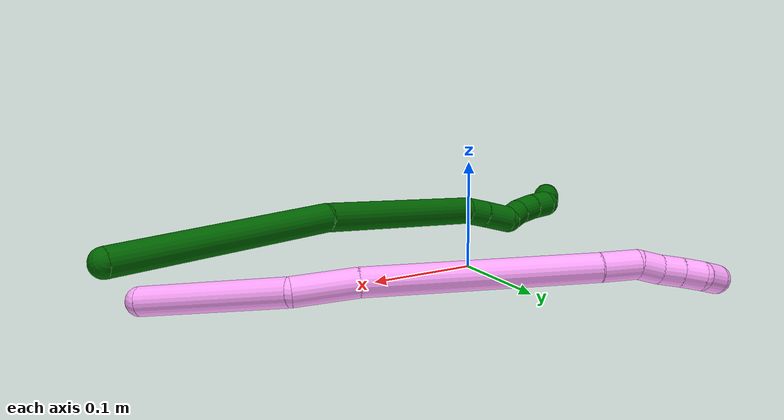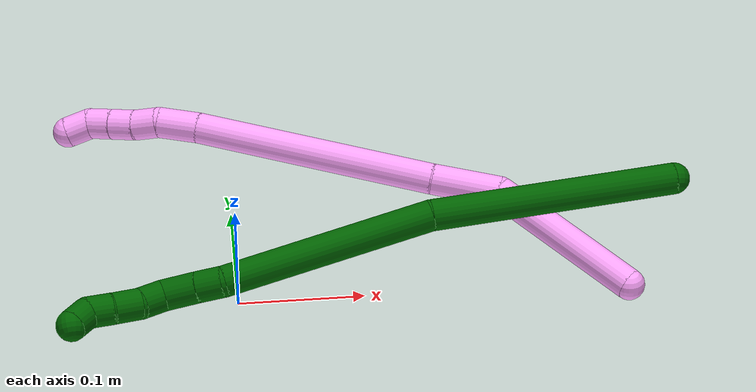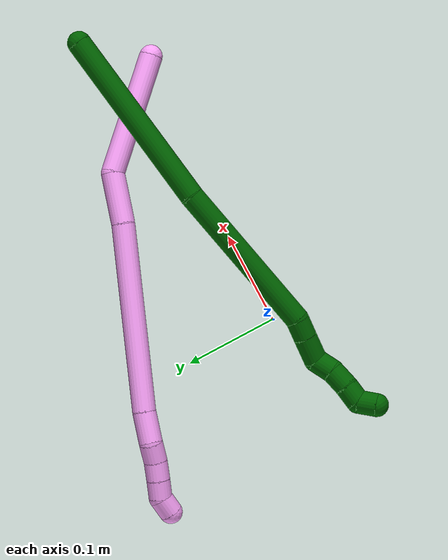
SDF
<sdf version="1.7">
 <world name="default">
  <model name="photoneo_s_sensor">
   <static>1</static>
   <pose>0 0 2 1.57079 1.57079 3.14159</pose>
   <link name="link">
    <inertial><mass>0.1</mass></inertial>
    <sensor name="sensor" type="depth">
     <update_rate>30</update_rate>
     <camera>
      <horizontal_fov>1.22</horizontal_fov>
      <image><width>1920</width><height>1200</height><format>B8G8R8</format></image>
      <clip><near>0.1</near><far>4</far></clip>
      <depth_camera><output>points</output></depth_camera>
     </camera>
     <plugin name="camera_plugin" filename="libgazebo_ros_depth_camera.so">
      <baseline>0.2</baseline>
      <alwaysOn>1</alwaysOn>
      <updateRate>0.0</updateRate>
      <cameraName>camera_ir</cameraName>
      <imageTopicName>/camera/color/image_raw</imageTopicName>
      <cameraInfoTopicName>/camera/color/camera_info</cameraInfoTopicName>
      <depthImageTopicName>/camera/depth/image_raw</depthImageTopicName>
      <depthImageCameraInfoTopicName>/camera/depth/camera_info</depthImageCameraInfoTopicName>
      <pointCloudTopicName>/camera/depth/points</pointCloudTopicName>
      <frameName>fr_optical</frameName>
      <pointCloudCutoff>0.1</pointCloudCutoff>
      <pointCloudCutoffMax>2.0</pointCloudCutoffMax>
      <distortionK1>0</distortionK1>
      <distortionK2>0</distortionK2>
      <distortionK3>0</distortionK3>
      <distortionT1>0</distortionT1>
      <distortionT2>0</distortionT2>
      <CxPrime>0</CxPrime>
      <Cx>0</Cx>
      <Cy>0</Cy>
      <focalLength>0</focalLength>
      <hackBaseline>0</hackBaseline>
     </plugin>
    </sensor>
   </link>
  </model>
  <model name="bin">
   <static>1</static>
   <link name="bottom">
    <collision name="collision-bottom">
     <pose>0 0 -0.01 0 -0 0</pose>
     <geometry><box><size>0.8 0.6 0.02</size></box></geometry>
     <surface>
      <friction><ode><mu>100</mu><mu2>100</mu2></ode></friction>
      <contact><collide_bitmask>65535</collide_bitmask></contact>
     </surface>
    </collision>
   </link>
   <link name="west_wall">
    <collision name="collision-west_wall">
     <pose>-0.41 0 0.1 0 -0 0</pose>
     <geometry><box><size>0.02 0.6 0.2</size></box></geometry>
     <surface>
      <friction><ode><mu>100</mu><mu2>100</mu2></ode></friction>
      <contact><collide_bitmask>65535</collide_bitmask></contact>
     </surface>
    </collision>
   </link>
   <link name="east_wall">
    <collision name="collision-east_wall">
     <pose>0.41 0 0.1 0 -0 0</pose>
     <geometry><box><size>0.02 0.6 0.2</size></box></geometry>
     <surface>
      <friction><ode><mu>100</mu><mu2>100</mu2></ode></friction>
      <contact><collide_bitmask>65535</collide_bitmask></contact>
     </surface>
    </collision>
   </link>
   <link name="south_wall">
    <collision name="collision-south_wall">
     <pose>0 -0.31 0.1 0 -0 0</pose>
     <geometry><box><size>0.8 0.02 0.2</size></box></geometry>
     <surface>
      <friction><ode><mu>100</mu><mu2>100</mu2></ode></friction>
      <contact><collide_bitmask>65535</collide_bitmask></contact>
     </surface>
    </collision>
   </link>
   <link name="north_wall">
    <collision name="collision-north_wall">
     <pose>0 0.31 0.1 0 -0 0</pose>
     <geometry><box><size>0.8 0.02 0.2</size></box></geometry>
     <surface>
      <friction><ode><mu>100</mu><mu2>100</mu2></ode></friction>
      <contact><collide_bitmask>65535</collide_bitmask></contact>
     </surface>
    </collision>
   </link>
  </model>
  <model name="4">
   <static>0</static>
   <link name="4">
    <collision name="collision-cylinder-e_1_1_4">
     <pose>-0.018534 -0.061307 0.016933 1.30132 -0.283551 -0.216461</pose>
     <geometry><cylinder><radius>0.0125</radius><length>0.132496</length></cylinder></geometry>
     <surface>
      <friction><ode><mu>1.16</mu><mu2>1.16</mu2><slip1>0</slip1><slip2>0</slip2></ode></friction>
      <contact><ode><kp>1e+06</kp><kd>1</kd><max_vel>0</max_vel><min_depth>0.001</min_depth></ode></contact>
     </surface>
    </collision>
    <visual name="visual-cylinder-e_1_1_4">
     <pose>-0.018534 -0.061307 0.016933 1.30132 -0.283551 -0.216461</pose>
     <geometry><cylinder><radius>0.0125</radius><length>0.132496</length></cylinder></geometry>
     <material><ambient>1 0.65098 0.996078 1</ambient></material>
    </visual>
    <collision name="collision-cylinder-e_2_4_5">
     <pose>-0.031446 -0.149423 0.036951 1.4562 0.205402 0.183248</pose>
     <geometry><cylinder><radius>0.0125</radius><length>0.055129</length></cylinder></geometry>
     <surface>
      <friction><ode><mu>1.16</mu><mu2>1.16</mu2><slip1>0</slip1><slip2>0</slip2></ode></friction>
      <contact><ode><kp>1e+06</kp><kd>1</kd><max_vel>0</max_vel><min_depth>0.001</min_depth></ode></contact>
     </surface>
    </collision>
    <visual name="visual-cylinder-e_2_4_5">
     <pose>-0.031446 -0.149423 0.036951 1.4562 0.205402 0.183248</pose>
     <geometry><cylinder><radius>0.0125</radius><length>0.055129</length></cylinder></geometry>
     <material><ambient>1 0.65098 0.996078 1</ambient></material>
    </visual>
    <collision name="collision-cylinder-e_3_5_6">
     <pose>-0.015265 -0.274552 0.047587 1.49415 0.106664 0.0988</pose>
     <geometry><cylinder><radius>0.0125</radius><length>0.198349</length></cylinder></geometry>
     <surface>
      <friction><ode><mu>1.16</mu><mu2>1.16</mu2><slip1>0</slip1><slip2>0</slip2></ode></friction>
      <contact><ode><kp>1e+06</kp><kd>1</kd><max_vel>0</max_vel><min_depth>0.001</min_depth></ode></contact>
     </surface>
    </collision>
    <visual name="visual-cylinder-e_3_5_6">
     <pose>-0.015265 -0.274552 0.047587 1.49415 0.106664 0.0988</pose>
     <geometry><cylinder><radius>0.0125</radius><length>0.198349</length></cylinder></geometry>
     <material><ambient>1 0.65098 0.996078 1</ambient></material>
    </visual>
    <collision name="collision-cylinder-e_4_6_7">
     <pose>-0.001377 -0.389097 0.055997 1.51786 0.202163 0.191801</pose>
     <geometry><cylinder><radius>0.0125</radius><length>0.03317</length></cylinder></geometry>
     <surface>
      <friction><ode><mu>1.16</mu><mu2>1.16</mu2><slip1>0</slip1><slip2>0</slip2></ode></friction>
      <contact><ode><kp>1e+06</kp><kd>1</kd><max_vel>0</max_vel><min_depth>0.001</min_depth></ode></contact>
     </surface>
    </collision>
    <visual name="visual-cylinder-e_4_6_7">
     <pose>-0.001377 -0.389097 0.055997 1.51786 0.202163 0.191801</pose>
     <geometry><cylinder><radius>0.0125</radius><length>0.03317</length></cylinder></geometry>
     <material><ambient>1 0.65098 0.996078 1</ambient></material>
    </visual>
    <collision name="collision-cylinder-e_5_7_8">
     <pose>0.003786 -0.415219 0.054279 1.8256 0.177378 0.229094</pose>
     <geometry><cylinder><radius>0.0125</radius><length>0.02078</length></cylinder></geometry>
     <surface>
      <friction><ode><mu>1.16</mu><mu2>1.16</mu2><slip1>0</slip1><slip2>0</slip2></ode></friction>
      <contact><ode><kp>1e+06</kp><kd>1</kd><max_vel>0</max_vel><min_depth>0.001</min_depth></ode></contact>
     </surface>
    </collision>
    <visual name="visual-cylinder-e_5_7_8">
     <pose>0.003786 -0.415219 0.054279 1.8256 0.177378 0.229094</pose>
     <geometry><cylinder><radius>0.0125</radius><length>0.02078</length></cylinder></geometry>
     <material><ambient>1 0.65098 0.996078 1</ambient></material>
    </visual>
    <collision name="collision-cylinder-e_6_8_9">
     <pose>0.006659 -0.434997 0.050412 1.70059 0.103947 0.118365</pose>
     <geometry><cylinder><radius>0.0125</radius><length>0.020038</length></cylinder></geometry>
     <surface>
      <friction><ode><mu>1.16</mu><mu2>1.16</mu2><slip1>0</slip1><slip2>0</slip2></ode></friction>
      <contact><ode><kp>1e+06</kp><kd>1</kd><max_vel>0</max_vel><min_depth>0.001</min_depth></ode></contact>
     </surface>
    </collision>
    <visual name="visual-cylinder-e_6_8_9">
     <pose>0.006659 -0.434997 0.050412 1.70059 0.103947 0.118365</pose>
     <geometry><cylinder><radius>0.0125</radius><length>0.020038</length></cylinder></geometry>
     <material><ambient>1 0.65098 0.996078 1</ambient></material>
    </visual>
    <collision name="collision-cylinder-e_7_9_10">
     <pose>0.008456 -0.454748 0.0476 1.72381 0.075632 0.088175</pose>
     <geometry><cylinder><radius>0.0125</radius><length>0.02003</length></cylinder></geometry>
     <surface>
      <friction><ode><mu>1.16</mu><mu2>1.16</mu2><slip1>0</slip1><slip2>0</slip2></ode></friction>
      <contact><ode><kp>1e+06</kp><kd>1</kd><max_vel>0</max_vel><min_depth>0.001</min_depth></ode></contact>
     </surface>
    </collision>
    <visual name="visual-cylinder-e_7_9_10">
     <pose>0.008456 -0.454748 0.0476 1.72381 0.075632 0.088175</pose>
     <geometry><cylinder><radius>0.0125</radius><length>0.02003</length></cylinder></geometry>
     <material><ambient>1 0.65098 0.996078 1</ambient></material>
    </visual>
    <collision name="collision-cylinder-e_8_10_2">
     <pose>0.014028 -0.472746 0.042789 1.9553 0.502223 0.727229</pose>
     <geometry><cylinder><radius>0.0125</radius><length>0.020007</length></cylinder></geometry>
     <surface>
      <friction><ode><mu>1.16</mu><mu2>1.16</mu2><slip1>0</slip1><slip2>0</slip2></ode></friction>
      <contact><ode><kp>1e+06</kp><kd>1</kd><max_vel>0</max_vel><min_depth>0.001</min_depth></ode></contact>
     </surface>
    </collision>
    <visual name="visual-cylinder-e_8_10_2">
     <pose>0.014028 -0.472746 0.042789 1.9553 0.502223 0.727229</pose>
     <geometry><cylinder><radius>0.0125</radius><length>0.020007</length></cylinder></geometry>
     <material><ambient>1 0.65098 0.996078 1</ambient></material>
    </visual>
    <collision name="collision-sphere-2">
     <pose>0.018843 -0.480874 0.039499 0 -0 0</pose>
     <geometry><sphere><radius>0.0125</radius></sphere></geometry>
     <surface>
      <friction><ode><mu>1.16</mu><mu2>1.16</mu2><slip1>0</slip1><slip2>0</slip2></ode></friction>
      <contact><ode><kp>1e+06</kp><kd>1</kd><max_vel>0</max_vel><min_depth>0.001</min_depth></ode></contact>
     </surface>
    </collision>
    <visual name="visual-sphere-2">
     <pose>0.018843 -0.480874 0.039499 0 -0 0</pose>
     <geometry><sphere><radius>0.0125</radius></sphere></geometry>
     <material><ambient>1 0.65098 0.996078 1</ambient></material>
    </visual>
    <collision name="collision-sphere-10">
     <pose>0.009212 -0.464618 0.046078 0 -0 0</pose>
     <geometry><sphere><radius>0.0125</radius></sphere></geometry>
     <surface>
      <friction><ode><mu>1.16</mu><mu2>1.16</mu2><slip1>0</slip1><slip2>0</slip2></ode></friction>
      <contact><ode><kp>1e+06</kp><kd>1</kd><max_vel>0</max_vel><min_depth>0.001</min_depth></ode></contact>
     </surface>
    </collision>
    <visual name="visual-sphere-10">
     <pose>0.009212 -0.464618 0.046078 0 -0 0</pose>
     <geometry><sphere><radius>0.0125</radius></sphere></geometry>
     <material><ambient>1 0.65098 0.996078 1</ambient></material>
    </visual>
    <collision name="collision-sphere-9">
     <pose>0.007699 -0.444878 0.049122 0 -0 0</pose>
     <geometry><sphere><radius>0.0125</radius></sphere></geometry>
     <surface>
      <friction><ode><mu>1.16</mu><mu2>1.16</mu2><slip1>0</slip1><slip2>0</slip2></ode></friction>
      <contact><ode><kp>1e+06</kp><kd>1</kd><max_vel>0</max_vel><min_depth>0.001</min_depth></ode></contact>
     </surface>
    </collision>
    <visual name="visual-sphere-9">
     <pose>0.007699 -0.444878 0.049122 0 -0 0</pose>
     <geometry><sphere><radius>0.0125</radius></sphere></geometry>
     <material><ambient>1 0.65098 0.996078 1</ambient></material>
    </visual>
    <collision name="collision-sphere-4">
     <pose>-0.037068 -0.122614 0.033865 0 -0 0</pose>
     <geometry><sphere><radius>0.0125</radius></sphere></geometry>
     <surface>
      <friction><ode><mu>1.16</mu><mu2>1.16</mu2><slip1>0</slip1><slip2>0</slip2></ode></friction>
      <contact><ode><kp>1e+06</kp><kd>1</kd><max_vel>0</max_vel><min_depth>0.001</min_depth></ode></contact>
     </surface>
    </collision>
    <visual name="visual-sphere-4">
     <pose>-0.037068 -0.122614 0.033865 0 -0 0</pose>
     <geometry><sphere><radius>0.0125</radius></sphere></geometry>
     <material><ambient>1 0.65098 0.996078 1</ambient></material>
    </visual>
    <collision name="collision-sphere-1">
     <geometry><sphere><radius>0.0125</radius></sphere></geometry>
     <surface>
      <friction><ode><mu>1.16</mu><mu2>1.16</mu2><slip1>0</slip1><slip2>0</slip2></ode></friction>
      <contact><ode><kp>1e+06</kp><kd>1</kd><max_vel>0</max_vel><min_depth>0.001</min_depth></ode></contact>
     </surface>
    </collision>
    <visual name="visual-sphere-1">
     <geometry><sphere><radius>0.0125</radius></sphere></geometry>
     <material><ambient>1 0.65098 0.996078 1</ambient></material>
    </visual>
    <collision name="collision-sphere-8">
     <pose>0.00562 -0.425116 0.051701 0 -0 0</pose>
     <geometry><sphere><radius>0.0125</radius></sphere></geometry>
     <surface>
      <friction><ode><mu>1.16</mu><mu2>1.16</mu2><slip1>0</slip1><slip2>0</slip2></ode></friction>
      <contact><ode><kp>1e+06</kp><kd>1</kd><max_vel>0</max_vel><min_depth>0.001</min_depth></ode></contact>
     </surface>
    </collision>
    <visual name="visual-sphere-8">
     <pose>0.00562 -0.425116 0.051701 0 -0 0</pose>
     <geometry><sphere><radius>0.0125</radius></sphere></geometry>
     <material><ambient>1 0.65098 0.996078 1</ambient></material>
    </visual>
    <collision name="collision-sphere-5">
     <pose>-0.025824 -0.176231 0.040037 0 -0 0</pose>
     <geometry><sphere><radius>0.0125</radius></sphere></geometry>
     <surface>
      <friction><ode><mu>1.16</mu><mu2>1.16</mu2><slip1>0</slip1><slip2>0</slip2></ode></friction>
      <contact><ode><kp>1e+06</kp><kd>1</kd><max_vel>0</max_vel><min_depth>0.001</min_depth></ode></contact>
     </surface>
    </collision>
    <visual name="visual-sphere-5">
     <pose>-0.025824 -0.176231 0.040037 0 -0 0</pose>
     <geometry><sphere><radius>0.0125</radius></sphere></geometry>
     <material><ambient>1 0.65098 0.996078 1</ambient></material>
    </visual>
    <collision name="collision-sphere-6">
     <pose>-0.004707 -0.372873 0.055138 0 -0 0</pose>
     <geometry><sphere><radius>0.0125</radius></sphere></geometry>
     <surface>
      <friction><ode><mu>1.16</mu><mu2>1.16</mu2><slip1>0</slip1><slip2>0</slip2></ode></friction>
      <contact><ode><kp>1e+06</kp><kd>1</kd><max_vel>0</max_vel><min_depth>0.001</min_depth></ode></contact>
     </surface>
    </collision>
    <visual name="visual-sphere-6">
     <pose>-0.004707 -0.372873 0.055138 0 -0 0</pose>
     <geometry><sphere><radius>0.0125</radius></sphere></geometry>
     <material><ambient>1 0.65098 0.996078 1</ambient></material>
    </visual>
    <collision name="collision-sphere-7">
     <pose>0.001953 -0.405322 0.056857 0 -0 0</pose>
     <geometry><sphere><radius>0.0125</radius></sphere></geometry>
     <surface>
      <friction><ode><mu>1.16</mu><mu2>1.16</mu2><slip1>0</slip1><slip2>0</slip2></ode></friction>
      <contact><ode><kp>1e+06</kp><kd>1</kd><max_vel>0</max_vel><min_depth>0.001</min_depth></ode></contact>
     </surface>
    </collision>
    <visual name="visual-sphere-7">
     <pose>0.001953 -0.405322 0.056857 0 -0 0</pose>
     <geometry><sphere><radius>0.0125</radius></sphere></geometry>
     <material><ambient>1 0.65098 0.996078 1</ambient></material>
    </visual>
    <inertial>
     <pose>-0.013201 -0.239272 0.039049 0 -0 0</pose>
     <mass>0.5</mass>
     <inertia>
      <ixx>0.000893</ixx>
      <ixy>0</ixy>
      <ixz>0</ixz>
      <iyy>0.000114</iyy>
      <iyz>0</iyz>
      <izz>0.000845</izz>
     </inertia>
    </inertial>
   </link>
   <pose>0.307381 -0.017367 0.012265 0.077057 -0.149604 -2.05537</pose>
  </model>
  <model name="6">
   <static>0</static>
   <link name="6">
    <collision name="collision-cylinder-e_1_1_4">
     <pose>-0.096147 -0.0229 0.003041 1.43878 -1.335 -1.20857</pose>
     <geometry><cylinder><radius>0.0125</radius><length>0.197767</length></cylinder></geometry>
     <surface>
      <friction><ode><mu>1.16</mu><mu2>1.16</mu2><slip1>0</slip1><slip2>0</slip2></ode></friction>
      <contact><ode><kp>1e+06</kp><kd>1</kd><max_vel>0</max_vel><min_depth>0.001</min_depth></ode></contact>
     </surface>
    </collision>
    <visual name="visual-cylinder-e_1_1_4">
     <pose>-0.096147 -0.0229 0.003041 1.43878 -1.335 -1.20857</pose>
     <geometry><cylinder><radius>0.0125</radius><length>0.197767</length></cylinder></geometry>
     <material><ambient>0 0.392157 0.003922 1</ambient></material>
    </visual>
    <collision name="collision-cylinder-e_2_4_5">
     <pose>-0.271658 -0.072388 0.020295 1.07988 -1.20776 -0.78411</pose>
     <geometry><cylinder><radius>0.0125</radius><length>0.169794</length></cylinder></geometry>
     <surface>
      <friction><ode><mu>1.16</mu><mu2>1.16</mu2><slip1>0</slip1><slip2>0</slip2></ode></friction>
      <contact><ode><kp>1e+06</kp><kd>1</kd><max_vel>0</max_vel><min_depth>0.001</min_depth></ode></contact>
     </surface>
    </collision>
    <visual name="visual-cylinder-e_2_4_5">
     <pose>-0.271658 -0.072388 0.020295 1.07988 -1.20776 -0.78411</pose>
     <geometry><cylinder><radius>0.0125</radius><length>0.169794</length></cylinder></geometry>
     <material><ambient>0 0.392157 0.003922 1</ambient></material>
    </visual>
    <collision name="collision-cylinder-e_3_5_6">
     <pose>-0.359685 -0.104802 0.034522 1.56829 -0.978801 -0.976721</pose>
     <geometry><cylinder><radius>0.0125</radius><length>0.020882</length></cylinder></geometry>
     <surface>
      <friction><ode><mu>1.16</mu><mu2>1.16</mu2><slip1>0</slip1><slip2>0</slip2></ode></friction>
      <contact><ode><kp>1e+06</kp><kd>1</kd><max_vel>0</max_vel><min_depth>0.001</min_depth></ode></contact>
     </surface>
    </collision>
    <visual name="visual-cylinder-e_3_5_6">
     <pose>-0.359685 -0.104802 0.034522 1.56829 -0.978801 -0.976721</pose>
     <geometry><cylinder><radius>0.0125</radius><length>0.020882</length></cylinder></geometry>
     <material><ambient>0 0.392157 0.003922 1</ambient></material>
    </visual>
    <collision name="collision-cylinder-e_4_6_7">
     <pose>-0.380092 -0.118799 0.034824 1.53564 -0.962605 -0.934038</pose>
     <geometry><cylinder><radius>0.0125</radius><length>0.028617</length></cylinder></geometry>
     <surface>
      <friction><ode><mu>1.16</mu><mu2>1.16</mu2><slip1>0</slip1><slip2>0</slip2></ode></friction>
      <contact><ode><kp>1e+06</kp><kd>1</kd><max_vel>0</max_vel><min_depth>0.001</min_depth></ode></contact>
     </surface>
    </collision>
    <visual name="visual-cylinder-e_4_6_7">
     <pose>-0.380092 -0.118799 0.034824 1.53564 -0.962605 -0.934038</pose>
     <geometry><cylinder><radius>0.0125</radius><length>0.028617</length></cylinder></geometry>
     <material><ambient>0 0.392157 0.003922 1</ambient></material>
    </visual>
    <collision name="collision-cylinder-e_5_7_8">
     <pose>-0.401918 -0.126353 0.037975 -0.212191 -1.28808 0.159583</pose>
     <geometry><cylinder><radius>0.0125</radius><length>0.020998</length></cylinder></geometry>
     <surface>
      <friction><ode><mu>1.16</mu><mu2>1.16</mu2><slip1>0</slip1><slip2>0</slip2></ode></friction>
      <contact><ode><kp>1e+06</kp><kd>1</kd><max_vel>0</max_vel><min_depth>0.001</min_depth></ode></contact>
     </surface>
    </collision>
    <visual name="visual-cylinder-e_5_7_8">
     <pose>-0.401918 -0.126353 0.037975 -0.212191 -1.28808 0.159583</pose>
     <geometry><cylinder><radius>0.0125</radius><length>0.020998</length></cylinder></geometry>
     <material><ambient>0 0.392157 0.003922 1</ambient></material>
    </visual>
    <collision name="collision-cylinder-e_6_8_9">
     <pose>-0.422712 -0.126986 0.041751 0.939619 -1.42726 -0.828379</pose>
     <geometry><cylinder><radius>0.0125</radius><length>0.021647</length></cylinder></geometry>
     <surface>
      <friction><ode><mu>1.16</mu><mu2>1.16</mu2><slip1>0</slip1><slip2>0</slip2></ode></friction>
      <contact><ode><kp>1e+06</kp><kd>1</kd><max_vel>0</max_vel><min_depth>0.001</min_depth></ode></contact>
     </surface>
    </collision>
    <visual name="visual-cylinder-e_6_8_9">
     <pose>-0.422712 -0.126986 0.041751 0.939619 -1.42726 -0.828379</pose>
     <geometry><cylinder><radius>0.0125</radius><length>0.021647</length></cylinder></geometry>
     <material><ambient>0 0.392157 0.003922 1</ambient></material>
    </visual>
    <collision name="collision-cylinder-e_7_9_10">
     <pose>-0.443218 -0.130486 0.043037 1.40698 -1.34205 -1.18539</pose>
     <geometry><cylinder><radius>0.0125</radius><length>0.020112</length></cylinder></geometry>
     <surface>
      <friction><ode><mu>1.16</mu><mu2>1.16</mu2><slip1>0</slip1><slip2>0</slip2></ode></friction>
      <contact><ode><kp>1e+06</kp><kd>1</kd><max_vel>0</max_vel><min_depth>0.001</min_depth></ode></contact>
     </surface>
    </collision>
    <visual name="visual-cylinder-e_7_9_10">
     <pose>-0.443218 -0.130486 0.043037 1.40698 -1.34205 -1.18539</pose>
     <geometry><cylinder><radius>0.0125</radius><length>0.020112</length></cylinder></geometry>
     <material><ambient>0 0.392157 0.003922 1</ambient></material>
    </visual>
    <collision name="collision-cylinder-e_8_10_2">
     <pose>-0.460971 -0.129777 0.048863 -0.496971 -0.908603 0.246571</pose>
     <geometry><cylinder><radius>0.0125</radius><length>0.020183</length></cylinder></geometry>
     <surface>
      <friction><ode><mu>1.16</mu><mu2>1.16</mu2><slip1>0</slip1><slip2>0</slip2></ode></friction>
      <contact><ode><kp>1e+06</kp><kd>1</kd><max_vel>0</max_vel><min_depth>0.001</min_depth></ode></contact>
     </surface>
    </collision>
    <visual name="visual-cylinder-e_8_10_2">
     <pose>-0.460971 -0.129777 0.048863 -0.496971 -0.908603 0.246571</pose>
     <geometry><cylinder><radius>0.0125</radius><length>0.020183</length></cylinder></geometry>
     <material><ambient>0 0.392157 0.003922 1</ambient></material>
    </visual>
    <collision name="collision-sphere-2">
     <pose>-0.46893 -0.126819 0.054317 0 -0 0</pose>
     <geometry><sphere><radius>0.0125</radius></sphere></geometry>
     <surface>
      <friction><ode><mu>1.16</mu><mu2>1.16</mu2><slip1>0</slip1><slip2>0</slip2></ode></friction>
      <contact><ode><kp>1e+06</kp><kd>1</kd><max_vel>0</max_vel><min_depth>0.001</min_depth></ode></contact>
     </surface>
    </collision>
    <visual name="visual-sphere-2">
     <pose>-0.46893 -0.126819 0.054317 0 -0 0</pose>
     <geometry><sphere><radius>0.0125</radius></sphere></geometry>
     <material><ambient>0 0.392157 0.003922 1</ambient></material>
    </visual>
    <collision name="collision-sphere-10">
     <pose>-0.453012 -0.132736 0.043409 0 -0 0</pose>
     <geometry><sphere><radius>0.0125</radius></sphere></geometry>
     <surface>
      <friction><ode><mu>1.16</mu><mu2>1.16</mu2><slip1>0</slip1><slip2>0</slip2></ode></friction>
      <contact><ode><kp>1e+06</kp><kd>1</kd><max_vel>0</max_vel><min_depth>0.001</min_depth></ode></contact>
     </surface>
    </collision>
    <visual name="visual-sphere-10">
     <pose>-0.453012 -0.132736 0.043409 0 -0 0</pose>
     <geometry><sphere><radius>0.0125</radius></sphere></geometry>
     <material><ambient>0 0.392157 0.003922 1</ambient></material>
    </visual>
    <collision name="collision-sphere-9">
     <pose>-0.433424 -0.128236 0.042665 0 -0 0</pose>
     <geometry><sphere><radius>0.0125</radius></sphere></geometry>
     <surface>
      <friction><ode><mu>1.16</mu><mu2>1.16</mu2><slip1>0</slip1><slip2>0</slip2></ode></friction>
      <contact><ode><kp>1e+06</kp><kd>1</kd><max_vel>0</max_vel><min_depth>0.001</min_depth></ode></contact>
     </surface>
    </collision>
    <visual name="visual-sphere-9">
     <pose>-0.433424 -0.128236 0.042665 0 -0 0</pose>
     <geometry><sphere><radius>0.0125</radius></sphere></geometry>
     <material><ambient>0 0.392157 0.003922 1</ambient></material>
    </visual>
    <collision name="collision-sphere-4">
     <pose>-0.192295 -0.0458 0.006082 0 -0 0</pose>
     <geometry><sphere><radius>0.0125</radius></sphere></geometry>
     <surface>
      <friction><ode><mu>1.16</mu><mu2>1.16</mu2><slip1>0</slip1><slip2>0</slip2></ode></friction>
      <contact><ode><kp>1e+06</kp><kd>1</kd><max_vel>0</max_vel><min_depth>0.001</min_depth></ode></contact>
     </surface>
    </collision>
    <visual name="visual-sphere-4">
     <pose>-0.192295 -0.0458 0.006082 0 -0 0</pose>
     <geometry><sphere><radius>0.0125</radius></sphere></geometry>
     <material><ambient>0 0.392157 0.003922 1</ambient></material>
    </visual>
    <collision name="collision-sphere-1">
     <geometry><sphere><radius>0.0125</radius></sphere></geometry>
     <surface>
      <friction><ode><mu>1.16</mu><mu2>1.16</mu2><slip1>0</slip1><slip2>0</slip2></ode></friction>
      <contact><ode><kp>1e+06</kp><kd>1</kd><max_vel>0</max_vel><min_depth>0.001</min_depth></ode></contact>
     </surface>
    </collision>
    <visual name="visual-sphere-1">
     <geometry><sphere><radius>0.0125</radius></sphere></geometry>
     <material><ambient>0 0.392157 0.003922 1</ambient></material>
    </visual>
    <collision name="collision-sphere-8">
     <pose>-0.412 -0.125736 0.040838 0 -0 0</pose>
     <geometry><sphere><radius>0.0125</radius></sphere></geometry>
     <surface>
      <friction><ode><mu>1.16</mu><mu2>1.16</mu2><slip1>0</slip1><slip2>0</slip2></ode></friction>
      <contact><ode><kp>1e+06</kp><kd>1</kd><max_vel>0</max_vel><min_depth>0.001</min_depth></ode></contact>
     </surface>
    </collision>
    <visual name="visual-sphere-8">
     <pose>-0.412 -0.125736 0.040838 0 -0 0</pose>
     <geometry><sphere><radius>0.0125</radius></sphere></geometry>
     <material><ambient>0 0.392157 0.003922 1</ambient></material>
    </visual>
    <collision name="collision-sphere-5">
     <pose>-0.351021 -0.098976 0.034507 0 -0 0</pose>
     <geometry><sphere><radius>0.0125</radius></sphere></geometry>
     <surface>
      <friction><ode><mu>1.16</mu><mu2>1.16</mu2><slip1>0</slip1><slip2>0</slip2></ode></friction>
      <contact><ode><kp>1e+06</kp><kd>1</kd><max_vel>0</max_vel><min_depth>0.001</min_depth></ode></contact>
     </surface>
    </collision>
    <visual name="visual-sphere-5">
     <pose>-0.351021 -0.098976 0.034507 0 -0 0</pose>
     <geometry><sphere><radius>0.0125</radius></sphere></geometry>
     <material><ambient>0 0.392157 0.003922 1</ambient></material>
    </visual>
    <collision name="collision-sphere-6">
     <pose>-0.36835 -0.110629 0.034537 0 -0 0</pose>
     <geometry><sphere><radius>0.0125</radius></sphere></geometry>
     <surface>
      <friction><ode><mu>1.16</mu><mu2>1.16</mu2><slip1>0</slip1><slip2>0</slip2></ode></friction>
      <contact><ode><kp>1e+06</kp><kd>1</kd><max_vel>0</max_vel><min_depth>0.001</min_depth></ode></contact>
     </surface>
    </collision>
    <visual name="visual-sphere-6">
     <pose>-0.36835 -0.110629 0.034537 0 -0 0</pose>
     <geometry><sphere><radius>0.0125</radius></sphere></geometry>
     <material><ambient>0 0.392157 0.003922 1</ambient></material>
    </visual>
    <collision name="collision-sphere-7">
     <pose>-0.391835 -0.12697 0.035111 0 -0 0</pose>
     <geometry><sphere><radius>0.0125</radius></sphere></geometry>
     <surface>
      <friction><ode><mu>1.16</mu><mu2>1.16</mu2><slip1>0</slip1><slip2>0</slip2></ode></friction>
      <contact><ode><kp>1e+06</kp><kd>1</kd><max_vel>0</max_vel><min_depth>0.001</min_depth></ode></contact>
     </surface>
    </collision>
    <visual name="visual-sphere-7">
     <pose>-0.391835 -0.12697 0.035111 0 -0 0</pose>
     <geometry><sphere><radius>0.0125</radius></sphere></geometry>
     <material><ambient>0 0.392157 0.003922 1</ambient></material>
    </visual>
    <inertial>
     <pose>-0.238673 -0.066108 0.018635 0 -0 0</pose>
     <mass>0.5</mass>
     <inertia>
      <ixx>-0.000124</ixx>
      <ixy>0</ixy>
      <ixz>0</ixz>
      <iyy>0.000749</iyy>
      <iyz>0</iyz>
      <izz>0.001319</izz>
     </inertia>
    </inertial>
   </link>
   <pose>0.348877 0.043215 0.066404 2.10479 0.235434 0.234492</pose>
  </model>
 </world>
</sdf>
